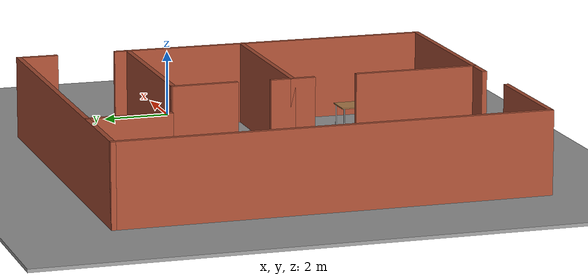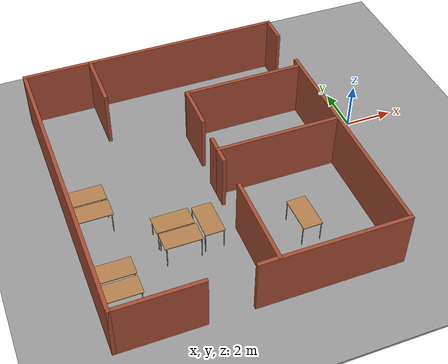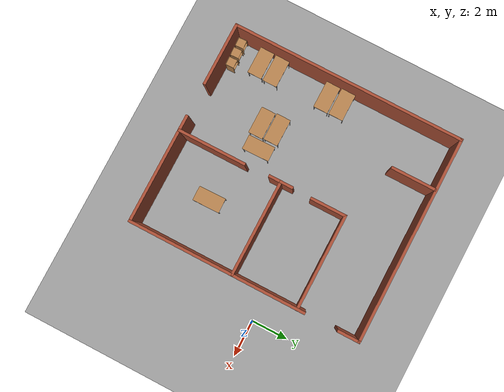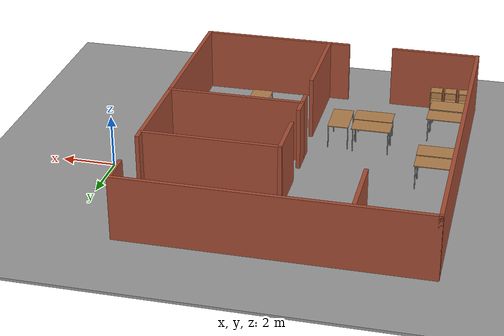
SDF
<sdf version="1.6">
 <world name="default">
  <model name="ground_plane">
   <static>1</static>
   <link name="link">
    <collision name="collision">
     <geometry><plane><normal>0 0 1</normal><size>100 100</size></plane></geometry>
     <surface>
      <contact><collide_bitmask>65535</collide_bitmask></contact>
      <friction><ode><mu>100</mu><mu2>50</mu2></ode></friction>
     </surface>
    </collision>
    <visual name="visual">
     <cast_shadows>0</cast_shadows>
     <geometry><plane><normal>0 0 1</normal><size>100 100</size></plane></geometry>
     <material>
      <script><uri>file://media/materials/scripts/gazebo.material</uri><name>Gazebo/Grey</name></script>
     </material>
    </visual>
   </link>
  </model>
  <model name="simple_office">
   <pose>-7.27757 -1.24508 0 0 -0 0</pose>
   <link name="Wall_18">
    <collision name="Wall_18_Collision">
     <geometry><box><size>12.75 0.15 2.5</size></box></geometry>
     <pose>0 0 1.25 0 -0 0</pose>
    </collision>
    <visual name="Wall_18_Visual">
     <pose>0 0 1.25 0 -0 0</pose>
     <geometry><box><size>12.75 0.15 2.5</size></box></geometry>
     <material>
      <script><uri>file://media/materials/scripts/gazebo.material</uri><name>Gazebo/Bricks</name></script>
      <ambient>1 1 1 1</ambient>
     </material>
     <meta><layer>0</layer></meta>
    </visual>
    <pose>-5.55213 0 0 0 -0 -1.5708</pose>
   </link>
   <link name="Wall_20">
    <collision name="Wall_20_Collision">
     <geometry><box><size>9.75 0.15 2.5</size></box></geometry>
     <pose>0 0 1.25 0 -0 0</pose>
    </collision>
    <visual name="Wall_20_Visual">
     <pose>0 0 1.25 0 -0 0</pose>
     <geometry><box><size>9.75 0.15 2.5</size></box></geometry>
     <material>
      <script><uri>file://media/materials/scripts/gazebo.material</uri><name>Gazebo/Bricks</name></script>
      <ambient>1 1 1 1</ambient>
     </material>
     <meta><layer>0</layer></meta>
    </visual>
    <pose>5.54787 -1.5 0 0 -0 1.5708</pose>
   </link>
   <link name="Wall_22">
    <collision name="Wall_22_Collision">
     <geometry><box><size>11.25 0.15 2.5</size></box></geometry>
     <pose>0 0 1.25 0 -0 0</pose>
    </collision>
    <visual name="Wall_22_Visual">
     <pose>0 0 1.25 0 -0 0</pose>
     <geometry><box><size>11.25 0.15 2.5</size></box></geometry>
     <material>
      <script><uri>file://media/materials/scripts/gazebo.material</uri><name>Gazebo/Bricks</name></script>
      <ambient>1 1 1 1</ambient>
     </material>
     <meta><layer>0</layer></meta>
    </visual>
    <pose>-0.002126 6.3 0 0 -0 0</pose>
   </link>
   <link name="Wall_23">
    <collision name="Wall_23_Collision">
     <geometry><box><size>1.25 0.15 2.5</size></box></geometry>
     <pose>0 0 1.25 0 -0 0</pose>
    </collision>
    <visual name="Wall_23_Visual">
     <pose>0 0 1.25 0 -0 0</pose>
     <geometry><box><size>1.25 0.15 2.5</size></box></geometry>
     <material>
      <script><uri>file://media/materials/scripts/gazebo.material</uri><name>Gazebo/Bricks</name></script>
      <ambient>1 1 1 1</ambient>
     </material>
     <meta><layer>0</layer></meta>
    </visual>
    <pose>5.54787 5.75 0 0 -0 -1.5708</pose>
   </link>
   <link name="Wall_25">
    <collision name="Wall_25_Collision">
     <geometry><box><size>5.25 0.15 2.5</size></box></geometry>
     <pose>0 0 1.25 0 -0 0</pose>
    </collision>
    <visual name="Wall_25_Visual">
     <pose>0 0 1.25 0 -0 0</pose>
     <geometry><box><size>5.25 0.15 2.5</size></box></geometry>
     <material>
      <script><uri>file://media/materials/scripts/gazebo.material</uri><name>Gazebo/Bricks</name></script>
      <ambient>1 1 1 1</ambient>
     </material>
     <meta><layer>0</layer></meta>
    </visual>
    <pose>3.00213 2.93507 0 0 -0 3.14159</pose>
   </link>
   <link name="Wall_26">
    <collision name="Wall_26_Collision">
     <geometry><box><size>2 0.15 2.5</size></box></geometry>
     <pose>0 0 1.25 0 -0 0</pose>
    </collision>
    <visual name="Wall_26_Visual">
     <pose>0 0 1.25 0 -0 0</pose>
     <geometry><box><size>2 0.15 2.5</size></box></geometry>
     <material>
      <script><uri>file://media/materials/scripts/gazebo.material</uri><name>Gazebo/Bricks</name></script>
      <ambient>1 1 1 1</ambient>
     </material>
     <meta><layer>0</layer></meta>
    </visual>
    <pose>0.452127 2.01008 0 0 -0 -1.5708</pose>
   </link>
   <link name="Wall_36">
    <collision name="Wall_36_Collision">
     <geometry><box><size>5.25 0.15 2.5</size></box></geometry>
     <pose>0 0 1.25 0 -0 0</pose>
    </collision>
    <visual name="Wall_36_Visual">
     <pose>0 0 1.25 0 -0 0</pose>
     <geometry><box><size>5.25 0.15 2.5</size></box></geometry>
     <material>
      <script><uri>file://media/materials/scripts/gazebo.material</uri><name>Gazebo/Bricks</name></script>
      <ambient>1 1 1 1</ambient>
     </material>
     <meta><layer>0</layer></meta>
    </visual>
    <pose>2.97154 -0.643982 0 0 -0 3.14159</pose>
   </link>
   <link name="Wall_37">
    <collision name="Wall_37_Collision">
     <geometry><box><size>0.75 0.15 2.5</size></box></geometry>
     <pose>0 0 1.25 0 -0 0</pose>
    </collision>
    <visual name="Wall_37_Visual">
     <pose>0 0 1.25 0 -0 0</pose>
     <geometry><box><size>0.75 0.15 2.5</size></box></geometry>
     <material>
      <script><uri>file://media/materials/scripts/gazebo.material</uri><name>Gazebo/Bricks</name></script>
      <ambient>1 1 1 1</ambient>
     </material>
     <meta><layer>0</layer></meta>
    </visual>
    <pose>0.421537 -0.343982 0 0 -0 1.5708</pose>
   </link>
   <link name="Wall_39">
    <collision name="Wall_39_Collision">
     <geometry><box><size>0.75 0.15 2.5</size></box></geometry>
     <pose>0 0 1.25 0 -0 0</pose>
    </collision>
    <visual name="Wall_39_Visual">
     <pose>0 0 1.25 0 -0 0</pose>
     <geometry><box><size>0.75 0.15 2.5</size></box></geometry>
     <material>
      <script><uri>file://media/materials/scripts/gazebo.material</uri><name>Gazebo/Bricks</name></script>
      <ambient>1 1 1 1</ambient>
     </material>
     <meta><layer>0</layer></meta>
    </visual>
    <pose>0.421537 -0.943982 0 0 -0 -1.5708</pose>
   </link>
   <link name="Wall_42">
    <collision name="Wall_42_Collision">
     <geometry><box><size>3.75 0.15 2.5</size></box></geometry>
     <pose>0 0 1.25 0 -0 0</pose>
    </collision>
    <visual name="Wall_42_Visual">
     <pose>0 0 1.25 0 -0 0</pose>
     <geometry><box><size>3.75 0.15 2.5</size></box></geometry>
     <material>
      <script><uri>file://media/materials/scripts/gazebo.material</uri><name>Gazebo/Bricks</name></script>
      <ambient>1 1 1 1</ambient>
     </material>
     <meta><layer>0</layer></meta>
    </visual>
    <pose>0.474149 -4.47258 0 0 -0 1.5708</pose>
   </link>
   <link name="Wall_44">
    <collision name="Wall_44_Collision">
     <geometry><box><size>3.5 0.15 2.5</size></box></geometry>
     <pose>0 0 1.25 0 -0 0</pose>
    </collision>
    <visual name="Wall_44_Visual">
     <pose>0 0 1.25 0 -0 0</pose>
     <geometry><box><size>3.5 0.15 2.5</size></box></geometry>
     <material>
      <script><uri>file://media/materials/scripts/gazebo.material</uri><name>Gazebo/Bricks</name></script>
      <ambient>1 1 1 1</ambient>
     </material>
     <meta><layer>0</layer></meta>
    </visual>
    <pose>-3.87713 -6.3 0 0 -0 0</pose>
   </link>
   <link name="Wall_46">
    <collision name="Wall_46_Collision">
     <geometry><box><size>6 0.15 2.5</size></box></geometry>
     <pose>0 0 1.25 0 -0 0</pose>
    </collision>
    <visual name="Wall_46_Visual">
     <pose>0 0 1.25 0 -0 0</pose>
     <geometry><box><size>6 0.15 2.5</size></box></geometry>
     <material>
      <script><uri>file://media/materials/scripts/gazebo.material</uri><name>Gazebo/Bricks</name></script>
      <ambient>1 1 1 1</ambient>
     </material>
     <meta><layer>0</layer></meta>
    </visual>
    <pose>2.62287 -6.3 0 0 -0 3.14159</pose>
   </link>
   <link name="Wall_48">
    <collision name="Wall_48_Collision">
     <geometry><box><size>2.5 0.15 2.5</size></box></geometry>
     <pose>0 0 1.25 0 -0 0</pose>
    </collision>
    <visual name="Wall_48_Visual">
     <pose>0 0 1.25 0 -0 0</pose>
     <geometry><box><size>2.5 0.15 2.5</size></box></geometry>
     <material>
      <script><uri>file://media/materials/scripts/gazebo.material</uri><name>Gazebo/Bricks</name></script>
      <ambient>1 1 1 1</ambient>
     </material>
     <meta><layer>0</layer></meta>
    </visual>
    <pose>-2.73782 5.09441 0 0 -0 -1.5708</pose>
   </link>
   <static>1</static>
  </model>
  <model name="ground_plane_0">
   <static>1</static>
   <link name="link">
    <collision name="collision">
     <geometry><plane><normal>0 0 1</normal><size>100 100</size></plane></geometry>
     <surface>
      <contact><collide_bitmask>65535</collide_bitmask></contact>
      <friction><ode><mu>100</mu><mu2>50</mu2></ode></friction>
     </surface>
    </collision>
    <visual name="visual">
     <cast_shadows>0</cast_shadows>
     <geometry><plane><normal>0 0 1</normal><size>100 100</size></plane></geometry>
     <material>
      <script><uri>file://media/materials/scripts/gazebo.material</uri><name>Gazebo/Grey</name></script>
     </material>
    </visual>
   </link>
   <pose>-11.7711 -0.848373 0 0 -0 0</pose>
  </model>
  <model name="table_2">
   <static>1</static>
   <link name="link">
    <collision name="surface">
     <pose>0 0 1 0 -0 0</pose>
     <geometry><box><size>1.5 0.8 0.03</size></box></geometry>
     <surface><friction><ode><mu>0.6</mu><mu2>0.6</mu2></ode></friction></surface>
    </collision>
    <visual name="visual1">
     <pose>0 0 1 0 -0 0</pose>
     <geometry><box><size>1.5 0.8 0.03</size></box></geometry>
     <material>
      <script><uri>file://media/materials/scripts/gazebo.material</uri><name>Gazebo/Wood</name></script>
     </material>
    </visual>
    <collision name="front_left_leg">
     <pose>0.68 0.38 0.5 0 -0 0</pose>
     <geometry><cylinder><radius>0.02</radius><length>1</length></cylinder></geometry>
    </collision>
    <visual name="front_left_leg">
     <pose>0.68 0.38 0.5 0 -0 0</pose>
     <geometry><cylinder><radius>0.02</radius><length>1</length></cylinder></geometry>
     <material>
      <script><uri>file://media/materials/scripts/gazebo.material</uri><name>Gazebo/Grey</name></script>
     </material>
    </visual>
    <collision name="front_right_leg">
     <pose>0.68 -0.38 0.5 0 -0 0</pose>
     <geometry><cylinder><radius>0.02</radius><length>1</length></cylinder></geometry>
    </collision>
    <visual name="front_right_leg">
     <pose>0.68 -0.38 0.5 0 -0 0</pose>
     <geometry><cylinder><radius>0.02</radius><length>1</length></cylinder></geometry>
     <material>
      <script><uri>file://media/materials/scripts/gazebo.material</uri><name>Gazebo/Grey</name></script>
     </material>
    </visual>
    <collision name="back_right_leg">
     <pose>-0.68 -0.38 0.5 0 -0 0</pose>
     <geometry><cylinder><radius>0.02</radius><length>1</length></cylinder></geometry>
    </collision>
    <visual name="back_right_leg">
     <pose>-0.68 -0.38 0.5 0 -0 0</pose>
     <geometry><cylinder><radius>0.02</radius><length>1</length></cylinder></geometry>
     <material>
      <script><uri>file://media/materials/scripts/gazebo.material</uri><name>Gazebo/Grey</name></script>
     </material>
    </visual>
    <collision name="back_left_leg">
     <pose>-0.68 0.38 0.5 0 -0 0</pose>
     <geometry><cylinder><radius>0.02</radius><length>1</length></cylinder></geometry>
    </collision>
    <visual name="back_left_leg">
     <pose>-0.68 0.38 0.5 0 -0 0</pose>
     <geometry><cylinder><radius>0.02</radius><length>1</length></cylinder></geometry>
     <material>
      <script><uri>file://media/materials/scripts/gazebo.material</uri><name>Gazebo/Grey</name></script>
     </material>
    </visual>
   </link>
   <pose>-4.4903 -4.8204 0 0 -0 1.58773</pose>
  </model>
  <model name="table_6">
   <static>1</static>
   <link name="link">
    <collision name="surface">
     <pose>0 0 1 0 -0 0</pose>
     <geometry><box><size>1.5 0.8 0.03</size></box></geometry>
     <surface><friction><ode><mu>0.6</mu><mu2>0.6</mu2></ode></friction></surface>
    </collision>
    <visual name="visual1">
     <pose>0 0 1 0 -0 0</pose>
     <geometry><box><size>1.5 0.8 0.03</size></box></geometry>
     <material>
      <script><uri>file://media/materials/scripts/gazebo.material</uri><name>Gazebo/Wood</name></script>
     </material>
    </visual>
    <collision name="front_left_leg">
     <pose>0.68 0.38 0.5 0 -0 0</pose>
     <geometry><cylinder><radius>0.02</radius><length>1</length></cylinder></geometry>
    </collision>
    <visual name="front_left_leg">
     <pose>0.68 0.38 0.5 0 -0 0</pose>
     <geometry><cylinder><radius>0.02</radius><length>1</length></cylinder></geometry>
     <material>
      <script><uri>file://media/materials/scripts/gazebo.material</uri><name>Gazebo/Grey</name></script>
     </material>
    </visual>
    <collision name="front_right_leg">
     <pose>0.68 -0.38 0.5 0 -0 0</pose>
     <geometry><cylinder><radius>0.02</radius><length>1</length></cylinder></geometry>
    </collision>
    <visual name="front_right_leg">
     <pose>0.68 -0.38 0.5 0 -0 0</pose>
     <geometry><cylinder><radius>0.02</radius><length>1</length></cylinder></geometry>
     <material>
      <script><uri>file://media/materials/scripts/gazebo.material</uri><name>Gazebo/Grey</name></script>
     </material>
    </visual>
    <collision name="back_right_leg">
     <pose>-0.68 -0.38 0.5 0 -0 0</pose>
     <geometry><cylinder><radius>0.02</radius><length>1</length></cylinder></geometry>
    </collision>
    <visual name="back_right_leg">
     <pose>-0.68 -0.38 0.5 0 -0 0</pose>
     <geometry><cylinder><radius>0.02</radius><length>1</length></cylinder></geometry>
     <material>
      <script><uri>file://media/materials/scripts/gazebo.material</uri><name>Gazebo/Grey</name></script>
     </material>
    </visual>
    <collision name="back_left_leg">
     <pose>-0.68 0.38 0.5 0 -0 0</pose>
     <geometry><cylinder><radius>0.02</radius><length>1</length></cylinder></geometry>
    </collision>
    <visual name="back_left_leg">
     <pose>-0.68 0.38 0.5 0 -0 0</pose>
     <geometry><cylinder><radius>0.02</radius><length>1</length></cylinder></geometry>
     <material>
      <script><uri>file://media/materials/scripts/gazebo.material</uri><name>Gazebo/Grey</name></script>
     </material>
    </visual>
   </link>
   <pose>-9.28377 -3.42263 0 0 -0 0</pose>
  </model>
  <model name="table_7">
   <static>1</static>
   <link name="link">
    <collision name="surface">
     <pose>0 0 1 0 -0 0</pose>
     <geometry><box><size>1.5 0.8 0.03</size></box></geometry>
     <surface><friction><ode><mu>0.6</mu><mu2>0.6</mu2></ode></friction></surface>
    </collision>
    <visual name="visual1">
     <pose>0 0 1 0 -0 0</pose>
     <geometry><box><size>1.5 0.8 0.03</size></box></geometry>
     <material>
      <script><uri>file://media/materials/scripts/gazebo.material</uri><name>Gazebo/Wood</name></script>
     </material>
    </visual>
    <collision name="front_left_leg">
     <pose>0.68 0.38 0.5 0 -0 0</pose>
     <geometry><cylinder><radius>0.02</radius><length>1</length></cylinder></geometry>
    </collision>
    <visual name="front_left_leg">
     <pose>0.68 0.38 0.5 0 -0 0</pose>
     <geometry><cylinder><radius>0.02</radius><length>1</length></cylinder></geometry>
     <material>
      <script><uri>file://media/materials/scripts/gazebo.material</uri><name>Gazebo/Grey</name></script>
     </material>
    </visual>
    <collision name="front_right_leg">
     <pose>0.68 -0.38 0.5 0 -0 0</pose>
     <geometry><cylinder><radius>0.02</radius><length>1</length></cylinder></geometry>
    </collision>
    <visual name="front_right_leg">
     <pose>0.68 -0.38 0.5 0 -0 0</pose>
     <geometry><cylinder><radius>0.02</radius><length>1</length></cylinder></geometry>
     <material>
      <script><uri>file://media/materials/scripts/gazebo.material</uri><name>Gazebo/Grey</name></script>
     </material>
    </visual>
    <collision name="back_right_leg">
     <pose>-0.68 -0.38 0.5 0 -0 0</pose>
     <geometry><cylinder><radius>0.02</radius><length>1</length></cylinder></geometry>
    </collision>
    <visual name="back_right_leg">
     <pose>-0.68 -0.38 0.5 0 -0 0</pose>
     <geometry><cylinder><radius>0.02</radius><length>1</length></cylinder></geometry>
     <material>
      <script><uri>file://media/materials/scripts/gazebo.material</uri><name>Gazebo/Grey</name></script>
     </material>
    </visual>
    <collision name="back_left_leg">
     <pose>-0.68 0.38 0.5 0 -0 0</pose>
     <geometry><cylinder><radius>0.02</radius><length>1</length></cylinder></geometry>
    </collision>
    <visual name="back_left_leg">
     <pose>-0.68 0.38 0.5 0 -0 0</pose>
     <geometry><cylinder><radius>0.02</radius><length>1</length></cylinder></geometry>
     <material>
      <script><uri>file://media/materials/scripts/gazebo.material</uri><name>Gazebo/Grey</name></script>
     </material>
    </visual>
   </link>
   <pose>-9.23972 -4.27415 0 0 -0 0</pose>
  </model>
  <model name="table_8">
   <static>1</static>
   <link name="link">
    <collision name="surface">
     <pose>0 0 1 0 -0 0</pose>
     <geometry><box><size>1.5 0.8 0.03</size></box></geometry>
     <surface><friction><ode><mu>0.6</mu><mu2>0.6</mu2></ode></friction></surface>
    </collision>
    <visual name="visual1">
     <pose>0 0 1 0 -0 0</pose>
     <geometry><box><size>1.5 0.8 0.03</size></box></geometry>
     <material>
      <script><uri>file://media/materials/scripts/gazebo.material</uri><name>Gazebo/Wood</name></script>
     </material>
    </visual>
    <collision name="front_left_leg">
     <pose>0.68 0.38 0.5 0 -0 0</pose>
     <geometry><cylinder><radius>0.02</radius><length>1</length></cylinder></geometry>
    </collision>
    <visual name="front_left_leg">
     <pose>0.68 0.38 0.5 0 -0 0</pose>
     <geometry><cylinder><radius>0.02</radius><length>1</length></cylinder></geometry>
     <material>
      <script><uri>file://media/materials/scripts/gazebo.material</uri><name>Gazebo/Grey</name></script>
     </material>
    </visual>
    <collision name="front_right_leg">
     <pose>0.68 -0.38 0.5 0 -0 0</pose>
     <geometry><cylinder><radius>0.02</radius><length>1</length></cylinder></geometry>
    </collision>
    <visual name="front_right_leg">
     <pose>0.68 -0.38 0.5 0 -0 0</pose>
     <geometry><cylinder><radius>0.02</radius><length>1</length></cylinder></geometry>
     <material>
      <script><uri>file://media/materials/scripts/gazebo.material</uri><name>Gazebo/Grey</name></script>
     </material>
    </visual>
    <collision name="back_right_leg">
     <pose>-0.68 -0.38 0.5 0 -0 0</pose>
     <geometry><cylinder><radius>0.02</radius><length>1</length></cylinder></geometry>
    </collision>
    <visual name="back_right_leg">
     <pose>-0.68 -0.38 0.5 0 -0 0</pose>
     <geometry><cylinder><radius>0.02</radius><length>1</length></cylinder></geometry>
     <material>
      <script><uri>file://media/materials/scripts/gazebo.material</uri><name>Gazebo/Grey</name></script>
     </material>
    </visual>
    <collision name="back_left_leg">
     <pose>-0.68 0.38 0.5 0 -0 0</pose>
     <geometry><cylinder><radius>0.02</radius><length>1</length></cylinder></geometry>
    </collision>
    <visual name="back_left_leg">
     <pose>-0.68 0.38 0.5 0 -0 0</pose>
     <geometry><cylinder><radius>0.02</radius><length>1</length></cylinder></geometry>
     <material>
      <script><uri>file://media/materials/scripts/gazebo.material</uri><name>Gazebo/Grey</name></script>
     </material>
    </visual>
   </link>
   <pose>-8.00187 -3.82124 0 0 0 -1.55463</pose>
  </model>
  <model name="table_9">
   <static>1</static>
   <link name="link">
    <collision name="surface">
     <pose>0 0 1 0 -0 0</pose>
     <geometry><box><size>1.5 0.8 0.03</size></box></geometry>
     <surface><friction><ode><mu>0.6</mu><mu2>0.6</mu2></ode></friction></surface>
    </collision>
    <visual name="visual1">
     <pose>0 0 1 0 -0 0</pose>
     <geometry><box><size>1.5 0.8 0.03</size></box></geometry>
     <material>
      <script><uri>file://media/materials/scripts/gazebo.material</uri><name>Gazebo/Wood</name></script>
     </material>
    </visual>
    <collision name="front_left_leg">
     <pose>0.68 0.38 0.5 0 -0 0</pose>
     <geometry><cylinder><radius>0.02</radius><length>1</length></cylinder></geometry>
    </collision>
    <visual name="front_left_leg">
     <pose>0.68 0.38 0.5 0 -0 0</pose>
     <geometry><cylinder><radius>0.02</radius><length>1</length></cylinder></geometry>
     <material>
      <script><uri>file://media/materials/scripts/gazebo.material</uri><name>Gazebo/Grey</name></script>
     </material>
    </visual>
    <collision name="front_right_leg">
     <pose>0.68 -0.38 0.5 0 -0 0</pose>
     <geometry><cylinder><radius>0.02</radius><length>1</length></cylinder></geometry>
    </collision>
    <visual name="front_right_leg">
     <pose>0.68 -0.38 0.5 0 -0 0</pose>
     <geometry><cylinder><radius>0.02</radius><length>1</length></cylinder></geometry>
     <material>
      <script><uri>file://media/materials/scripts/gazebo.material</uri><name>Gazebo/Grey</name></script>
     </material>
    </visual>
    <collision name="back_right_leg">
     <pose>-0.68 -0.38 0.5 0 -0 0</pose>
     <geometry><cylinder><radius>0.02</radius><length>1</length></cylinder></geometry>
    </collision>
    <visual name="back_right_leg">
     <pose>-0.68 -0.38 0.5 0 -0 0</pose>
     <geometry><cylinder><radius>0.02</radius><length>1</length></cylinder></geometry>
     <material>
      <script><uri>file://media/materials/scripts/gazebo.material</uri><name>Gazebo/Grey</name></script>
     </material>
    </visual>
    <collision name="back_left_leg">
     <pose>-0.68 0.38 0.5 0 -0 0</pose>
     <geometry><cylinder><radius>0.02</radius><length>1</length></cylinder></geometry>
    </collision>
    <visual name="back_left_leg">
     <pose>-0.68 0.38 0.5 0 -0 0</pose>
     <geometry><cylinder><radius>0.02</radius><length>1</length></cylinder></geometry>
     <material>
      <script><uri>file://media/materials/scripts/gazebo.material</uri><name>Gazebo/Grey</name></script>
     </material>
    </visual>
   </link>
   <pose>-12.0078 -5.79647 0 0 -0 0</pose>
  </model>
  <model name="table_10">
   <static>1</static>
   <link name="link">
    <collision name="surface">
     <pose>0 0 1 0 -0 0</pose>
     <geometry><box><size>1.5 0.8 0.03</size></box></geometry>
     <surface><friction><ode><mu>0.6</mu><mu2>0.6</mu2></ode></friction></surface>
    </collision>
    <visual name="visual1">
     <pose>0 0 1 0 -0 0</pose>
     <geometry><box><size>1.5 0.8 0.03</size></box></geometry>
     <material>
      <script><uri>file://media/materials/scripts/gazebo.material</uri><name>Gazebo/Wood</name></script>
     </material>
    </visual>
    <collision name="front_left_leg">
     <pose>0.68 0.38 0.5 0 -0 0</pose>
     <geometry><cylinder><radius>0.02</radius><length>1</length></cylinder></geometry>
    </collision>
    <visual name="front_left_leg">
     <pose>0.68 0.38 0.5 0 -0 0</pose>
     <geometry><cylinder><radius>0.02</radius><length>1</length></cylinder></geometry>
     <material>
      <script><uri>file://media/materials/scripts/gazebo.material</uri><name>Gazebo/Grey</name></script>
     </material>
    </visual>
    <collision name="front_right_leg">
     <pose>0.68 -0.38 0.5 0 -0 0</pose>
     <geometry><cylinder><radius>0.02</radius><length>1</length></cylinder></geometry>
    </collision>
    <visual name="front_right_leg">
     <pose>0.68 -0.38 0.5 0 -0 0</pose>
     <geometry><cylinder><radius>0.02</radius><length>1</length></cylinder></geometry>
     <material>
      <script><uri>file://media/materials/scripts/gazebo.material</uri><name>Gazebo/Grey</name></script>
     </material>
    </visual>
    <collision name="back_right_leg">
     <pose>-0.68 -0.38 0.5 0 -0 0</pose>
     <geometry><cylinder><radius>0.02</radius><length>1</length></cylinder></geometry>
    </collision>
    <visual name="back_right_leg">
     <pose>-0.68 -0.38 0.5 0 -0 0</pose>
     <geometry><cylinder><radius>0.02</radius><length>1</length></cylinder></geometry>
     <material>
      <script><uri>file://media/materials/scripts/gazebo.material</uri><name>Gazebo/Grey</name></script>
     </material>
    </visual>
    <collision name="back_left_leg">
     <pose>-0.68 0.38 0.5 0 -0 0</pose>
     <geometry><cylinder><radius>0.02</radius><length>1</length></cylinder></geometry>
    </collision>
    <visual name="back_left_leg">
     <pose>-0.68 0.38 0.5 0 -0 0</pose>
     <geometry><cylinder><radius>0.02</radius><length>1</length></cylinder></geometry>
     <material>
      <script><uri>file://media/materials/scripts/gazebo.material</uri><name>Gazebo/Grey</name></script>
     </material>
    </visual>
   </link>
   <pose>-11.9913 -4.90278 0 0 -0 0</pose>
  </model>
  <model name="table_11">
   <static>1</static>
   <link name="link">
    <collision name="surface">
     <pose>0 0 1 0 -0 0</pose>
     <geometry><box><size>1.5 0.8 0.03</size></box></geometry>
     <surface><friction><ode><mu>0.6</mu><mu2>0.6</mu2></ode></friction></surface>
    </collision>
    <visual name="visual1">
     <pose>0 0 1 0 -0 0</pose>
     <geometry><box><size>1.5 0.8 0.03</size></box></geometry>
     <material>
      <script><uri>file://media/materials/scripts/gazebo.material</uri><name>Gazebo/Wood</name></script>
     </material>
    </visual>
    <collision name="front_left_leg">
     <pose>0.68 0.38 0.5 0 -0 0</pose>
     <geometry><cylinder><radius>0.02</radius><length>1</length></cylinder></geometry>
    </collision>
    <visual name="front_left_leg">
     <pose>0.68 0.38 0.5 0 -0 0</pose>
     <geometry><cylinder><radius>0.02</radius><length>1</length></cylinder></geometry>
     <material>
      <script><uri>file://media/materials/scripts/gazebo.material</uri><name>Gazebo/Grey</name></script>
     </material>
    </visual>
    <collision name="front_right_leg">
     <pose>0.68 -0.38 0.5 0 -0 0</pose>
     <geometry><cylinder><radius>0.02</radius><length>1</length></cylinder></geometry>
    </collision>
    <visual name="front_right_leg">
     <pose>0.68 -0.38 0.5 0 -0 0</pose>
     <geometry><cylinder><radius>0.02</radius><length>1</length></cylinder></geometry>
     <material>
      <script><uri>file://media/materials/scripts/gazebo.material</uri><name>Gazebo/Grey</name></script>
     </material>
    </visual>
    <collision name="back_right_leg">
     <pose>-0.68 -0.38 0.5 0 -0 0</pose>
     <geometry><cylinder><radius>0.02</radius><length>1</length></cylinder></geometry>
    </collision>
    <visual name="back_right_leg">
     <pose>-0.68 -0.38 0.5 0 -0 0</pose>
     <geometry><cylinder><radius>0.02</radius><length>1</length></cylinder></geometry>
     <material>
      <script><uri>file://media/materials/scripts/gazebo.material</uri><name>Gazebo/Grey</name></script>
     </material>
    </visual>
    <collision name="back_left_leg">
     <pose>-0.68 0.38 0.5 0 -0 0</pose>
     <geometry><cylinder><radius>0.02</radius><length>1</length></cylinder></geometry>
    </collision>
    <visual name="back_left_leg">
     <pose>-0.68 0.38 0.5 0 -0 0</pose>
     <geometry><cylinder><radius>0.02</radius><length>1</length></cylinder></geometry>
     <material>
      <script><uri>file://media/materials/scripts/gazebo.material</uri><name>Gazebo/Grey</name></script>
     </material>
    </visual>
   </link>
   <pose>-11.9824 -1.92544 0 0 -0 0</pose>
  </model>
  <model name="table_12">
   <static>1</static>
   <link name="link">
    <collision name="surface">
     <pose>0 0 1 0 -0 0</pose>
     <geometry><box><size>1.5 0.8 0.03</size></box></geometry>
     <surface><friction><ode><mu>0.6</mu><mu2>0.6</mu2></ode></friction></surface>
    </collision>
    <visual name="visual1">
     <pose>0 0 1 0 -0 0</pose>
     <geometry><box><size>1.5 0.8 0.03</size></box></geometry>
     <material>
      <script><uri>file://media/materials/scripts/gazebo.material</uri><name>Gazebo/Wood</name></script>
     </material>
    </visual>
    <collision name="front_left_leg">
     <pose>0.68 0.38 0.5 0 -0 0</pose>
     <geometry><cylinder><radius>0.02</radius><length>1</length></cylinder></geometry>
    </collision>
    <visual name="front_left_leg">
     <pose>0.68 0.38 0.5 0 -0 0</pose>
     <geometry><cylinder><radius>0.02</radius><length>1</length></cylinder></geometry>
     <material>
      <script><uri>file://media/materials/scripts/gazebo.material</uri><name>Gazebo/Grey</name></script>
     </material>
    </visual>
    <collision name="front_right_leg">
     <pose>0.68 -0.38 0.5 0 -0 0</pose>
     <geometry><cylinder><radius>0.02</radius><length>1</length></cylinder></geometry>
    </collision>
    <visual name="front_right_leg">
     <pose>0.68 -0.38 0.5 0 -0 0</pose>
     <geometry><cylinder><radius>0.02</radius><length>1</length></cylinder></geometry>
     <material>
      <script><uri>file://media/materials/scripts/gazebo.material</uri><name>Gazebo/Grey</name></script>
     </material>
    </visual>
    <collision name="back_right_leg">
     <pose>-0.68 -0.38 0.5 0 -0 0</pose>
     <geometry><cylinder><radius>0.02</radius><length>1</length></cylinder></geometry>
    </collision>
    <visual name="back_right_leg">
     <pose>-0.68 -0.38 0.5 0 -0 0</pose>
     <geometry><cylinder><radius>0.02</radius><length>1</length></cylinder></geometry>
     <material>
      <script><uri>file://media/materials/scripts/gazebo.material</uri><name>Gazebo/Grey</name></script>
     </material>
    </visual>
    <collision name="back_left_leg">
     <pose>-0.68 0.38 0.5 0 -0 0</pose>
     <geometry><cylinder><radius>0.02</radius><length>1</length></cylinder></geometry>
    </collision>
    <visual name="back_left_leg">
     <pose>-0.68 0.38 0.5 0 -0 0</pose>
     <geometry><cylinder><radius>0.02</radius><length>1</length></cylinder></geometry>
     <material>
      <script><uri>file://media/materials/scripts/gazebo.material</uri><name>Gazebo/Grey</name></script>
     </material>
    </visual>
   </link>
   <pose>-12.0025 -1.05655 0 0 -0 0</pose>
  </model>
  <model name="cabinet_1">
   <static>1</static>
   <link name="cabinet_bottom_plate">
    <inertial>
     <pose>0 0 -1 0 -0 0</pose>
     <inertia><ixx>2.05</ixx><ixy>0</ixy><ixz>0</ixz><iyy>2.05</iyy><iyz>0</iyz><izz>2.05</izz></inertia>
     <mass>25</mass>
    </inertial>
    <collision name="cabinet_bottom_plate_geom">
     <pose>0 0 0.01 0 -0 0</pose>
     <geometry><box><size>0.45 0.45 0.02</size></box></geometry>
    </collision>
    <visual name="cabinet_bottom_plate_geom_visual">
     <pose>0 0 0.01 0 -0 0</pose>
     <geometry><box><size>0.45 0.45 0.02</size></box></geometry>
     <material>
      <script><uri>file://media/materials/scripts/gazebo.material</uri><name>Gazebo/Wood</name></script>
     </material>
    </visual>
    <collision name="cabinet_bottom_plate_geom_cabinet_back_plate">
     <pose>0.235 0 0.51 0 -0 0</pose>
     <geometry><box><size>0.02 0.45 1.02</size></box></geometry>
    </collision>
    <visual name="cabinet_bottom_plate_geom_cabinet_back_plate_visual">
     <pose>0.235 0 0.51 0 -0 0</pose>
     <geometry><box><size>0.02 0.45 1.02</size></box></geometry>
     <material>
      <script><uri>file://media/materials/scripts/gazebo.material</uri><name>Gazebo/Wood</name></script>
     </material>
    </visual>
    <collision name="cabinet_bottom_plate_geom_cabinet_left_plate">
     <pose>0 0.235 0.51 0 -0 0</pose>
     <geometry><box><size>0.45 0.02 1.02</size></box></geometry>
    </collision>
    <visual name="cabinet_bottom_plate_geom_cabinet_left_plate_visual">
     <pose>0 0.235 0.51 0 -0 0</pose>
     <geometry><box><size>0.45 0.02 1.02</size></box></geometry>
     <material>
      <script><uri>file://media/materials/scripts/gazebo.material</uri><name>Gazebo/Wood</name></script>
     </material>
    </visual>
    <collision name="cabinet_bottom_plate_geom_cabinet_middle_plate">
     <pose>0 0 0.51 0 -0 0</pose>
     <geometry><box><size>0.45 0.45 0.02</size></box></geometry>
    </collision>
    <visual name="cabinet_bottom_plate_geom_cabinet_middle_plate_visual">
     <pose>0 0 0.51 0 -0 0</pose>
     <geometry><box><size>0.45 0.45 0.02</size></box></geometry>
     <material>
      <script><uri>file://media/materials/scripts/gazebo.material</uri><name>Gazebo/Wood</name></script>
     </material>
    </visual>
    <collision name="cabinet_bottom_plate_geom_cabinet_right_plate">
     <pose>0 -0.235 0.51 0 -0 0</pose>
     <geometry><box><size>0.45 0.02 1.02</size></box></geometry>
    </collision>
    <visual name="cabinet_bottom_plate_geom_cabinet_right_plate_visual">
     <pose>0 -0.235 0.51 0 -0 0</pose>
     <geometry><box><size>0.45 0.02 1.02</size></box></geometry>
     <material>
      <script><uri>file://media/materials/scripts/gazebo.material</uri><name>Gazebo/Wood</name></script>
     </material>
    </visual>
    <collision name="cabinet_bottom_plate_geom_cabinet_top_plate">
     <pose>0 0 1.01 0 -0 0</pose>
     <geometry><box><size>0.45 0.45 0.02</size></box></geometry>
    </collision>
    <visual name="cabinet_bottom_plate_geom_cabinet_top_plate_visual">
     <pose>0 0 1.01 0 -0 0</pose>
     <geometry><box><size>0.45 0.45 0.02</size></box></geometry>
     <material>
      <script><uri>file://media/materials/scripts/gazebo.material</uri><name>Gazebo/Wood</name></script>
     </material>
    </visual>
   </link>
   <pose>-12.4622 -7.20653 0 0 0 -1.5257</pose>
  </model>
  <model name="cabinet_2">
   <static>1</static>
   <link name="cabinet_bottom_plate">
    <inertial>
     <pose>0 0 -1 0 -0 0</pose>
     <inertia><ixx>2.05</ixx><ixy>0</ixy><ixz>0</ixz><iyy>2.05</iyy><iyz>0</iyz><izz>2.05</izz></inertia>
     <mass>25</mass>
    </inertial>
    <collision name="cabinet_bottom_plate_geom">
     <pose>0 0 0.01 0 -0 0</pose>
     <geometry><box><size>0.45 0.45 0.02</size></box></geometry>
    </collision>
    <visual name="cabinet_bottom_plate_geom_visual">
     <pose>0 0 0.01 0 -0 0</pose>
     <geometry><box><size>0.45 0.45 0.02</size></box></geometry>
     <material>
      <script><uri>file://media/materials/scripts/gazebo.material</uri><name>Gazebo/Wood</name></script>
     </material>
    </visual>
    <collision name="cabinet_bottom_plate_geom_cabinet_back_plate">
     <pose>0.235 0 0.51 0 -0 0</pose>
     <geometry><box><size>0.02 0.45 1.02</size></box></geometry>
    </collision>
    <visual name="cabinet_bottom_plate_geom_cabinet_back_plate_visual">
     <pose>0.235 0 0.51 0 -0 0</pose>
     <geometry><box><size>0.02 0.45 1.02</size></box></geometry>
     <material>
      <script><uri>file://media/materials/scripts/gazebo.material</uri><name>Gazebo/Wood</name></script>
     </material>
    </visual>
    <collision name="cabinet_bottom_plate_geom_cabinet_left_plate">
     <pose>0 0.235 0.51 0 -0 0</pose>
     <geometry><box><size>0.45 0.02 1.02</size></box></geometry>
    </collision>
    <visual name="cabinet_bottom_plate_geom_cabinet_left_plate_visual">
     <pose>0 0.235 0.51 0 -0 0</pose>
     <geometry><box><size>0.45 0.02 1.02</size></box></geometry>
     <material>
      <script><uri>file://media/materials/scripts/gazebo.material</uri><name>Gazebo/Wood</name></script>
     </material>
    </visual>
    <collision name="cabinet_bottom_plate_geom_cabinet_middle_plate">
     <pose>0 0 0.51 0 -0 0</pose>
     <geometry><box><size>0.45 0.45 0.02</size></box></geometry>
    </collision>
    <visual name="cabinet_bottom_plate_geom_cabinet_middle_plate_visual">
     <pose>0 0 0.51 0 -0 0</pose>
     <geometry><box><size>0.45 0.45 0.02</size></box></geometry>
     <material>
      <script><uri>file://media/materials/scripts/gazebo.material</uri><name>Gazebo/Wood</name></script>
     </material>
    </visual>
    <collision name="cabinet_bottom_plate_geom_cabinet_right_plate">
     <pose>0 -0.235 0.51 0 -0 0</pose>
     <geometry><box><size>0.45 0.02 1.02</size></box></geometry>
    </collision>
    <visual name="cabinet_bottom_plate_geom_cabinet_right_plate_visual">
     <pose>0 -0.235 0.51 0 -0 0</pose>
     <geometry><box><size>0.45 0.02 1.02</size></box></geometry>
     <material>
      <script><uri>file://media/materials/scripts/gazebo.material</uri><name>Gazebo/Wood</name></script>
     </material>
    </visual>
    <collision name="cabinet_bottom_plate_geom_cabinet_top_plate">
     <pose>0 0 1.01 0 -0 0</pose>
     <geometry><box><size>0.45 0.45 0.02</size></box></geometry>
    </collision>
    <visual name="cabinet_bottom_plate_geom_cabinet_top_plate_visual">
     <pose>0 0 1.01 0 -0 0</pose>
     <geometry><box><size>0.45 0.45 0.02</size></box></geometry>
     <material>
      <script><uri>file://media/materials/scripts/gazebo.material</uri><name>Gazebo/Wood</name></script>
     </material>
    </visual>
   </link>
   <pose>-11.8939 -7.1946 0 0 0 -1.52927</pose>
  </model>
  <model name="cabinet_3">
   <static>1</static>
   <link name="cabinet_bottom_plate">
    <inertial>
     <pose>0 0 -1 0 -0 0</pose>
     <inertia><ixx>2.05</ixx><ixy>0</ixy><ixz>0</ixz><iyy>2.05</iyy><iyz>0</iyz><izz>2.05</izz></inertia>
     <mass>25</mass>
    </inertial>
    <collision name="cabinet_bottom_plate_geom">
     <pose>0 0 0.01 0 -0 0</pose>
     <geometry><box><size>0.45 0.45 0.02</size></box></geometry>
    </collision>
    <visual name="cabinet_bottom_plate_geom_visual">
     <pose>0 0 0.01 0 -0 0</pose>
     <geometry><box><size>0.45 0.45 0.02</size></box></geometry>
     <material>
      <script><uri>file://media/materials/scripts/gazebo.material</uri><name>Gazebo/Wood</name></script>
     </material>
    </visual>
    <collision name="cabinet_bottom_plate_geom_cabinet_back_plate">
     <pose>0.235 0 0.51 0 -0 0</pose>
     <geometry><box><size>0.02 0.45 1.02</size></box></geometry>
    </collision>
    <visual name="cabinet_bottom_plate_geom_cabinet_back_plate_visual">
     <pose>0.235 0 0.51 0 -0 0</pose>
     <geometry><box><size>0.02 0.45 1.02</size></box></geometry>
     <material>
      <script><uri>file://media/materials/scripts/gazebo.material</uri><name>Gazebo/Wood</name></script>
     </material>
    </visual>
    <collision name="cabinet_bottom_plate_geom_cabinet_left_plate">
     <pose>0 0.235 0.51 0 -0 0</pose>
     <geometry><box><size>0.45 0.02 1.02</size></box></geometry>
    </collision>
    <visual name="cabinet_bottom_plate_geom_cabinet_left_plate_visual">
     <pose>0 0.235 0.51 0 -0 0</pose>
     <geometry><box><size>0.45 0.02 1.02</size></box></geometry>
     <material>
      <script><uri>file://media/materials/scripts/gazebo.material</uri><name>Gazebo/Wood</name></script>
     </material>
    </visual>
    <collision name="cabinet_bottom_plate_geom_cabinet_middle_plate">
     <pose>0 0 0.51 0 -0 0</pose>
     <geometry><box><size>0.45 0.45 0.02</size></box></geometry>
    </collision>
    <visual name="cabinet_bottom_plate_geom_cabinet_middle_plate_visual">
     <pose>0 0 0.51 0 -0 0</pose>
     <geometry><box><size>0.45 0.45 0.02</size></box></geometry>
     <material>
      <script><uri>file://media/materials/scripts/gazebo.material</uri><name>Gazebo/Wood</name></script>
     </material>
    </visual>
    <collision name="cabinet_bottom_plate_geom_cabinet_right_plate">
     <pose>0 -0.235 0.51 0 -0 0</pose>
     <geometry><box><size>0.45 0.02 1.02</size></box></geometry>
    </collision>
    <visual name="cabinet_bottom_plate_geom_cabinet_right_plate_visual">
     <pose>0 -0.235 0.51 0 -0 0</pose>
     <geometry><box><size>0.45 0.02 1.02</size></box></geometry>
     <material>
      <script><uri>file://media/materials/scripts/gazebo.material</uri><name>Gazebo/Wood</name></script>
     </material>
    </visual>
    <collision name="cabinet_bottom_plate_geom_cabinet_top_plate">
     <pose>0 0 1.01 0 -0 0</pose>
     <geometry><box><size>0.45 0.45 0.02</size></box></geometry>
    </collision>
    <visual name="cabinet_bottom_plate_geom_cabinet_top_plate_visual">
     <pose>0 0 1.01 0 -0 0</pose>
     <geometry><box><size>0.45 0.45 0.02</size></box></geometry>
     <material>
      <script><uri>file://media/materials/scripts/gazebo.material</uri><name>Gazebo/Wood</name></script>
     </material>
    </visual>
   </link>
   <pose>-11.3344 -7.17057 0 0 0 -1.55264</pose>
  </model>
 </world>
</sdf>
